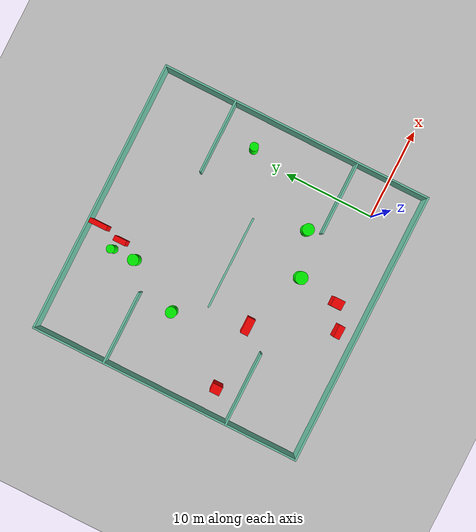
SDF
<sdf version="1.7">
 <world name="default">
  <light name="sun" type="directional">
   <pose>0 0 10 0 -0 0</pose>
   <diffuse>0.8 0.8 0.8 1</diffuse>
   <specular>0.2 0.2 0.2 1</specular>
   <attenuation>
    <range>1000</range>
    <constant>0.9</constant>
    <linear>0.01</linear>
    <quadratic>0.001</quadratic>
   </attenuation>
   <direction>-0.5 0.1 -0.9</direction>
   <spot><inner_angle>0</inner_angle><outer_angle>0</outer_angle><falloff>0</falloff></spot>
  </light>
  <model name="ground_plane">
   <static>1</static>
   <link name="link">
    <collision name="collision">
     <geometry><plane><normal>0 0 1</normal><size>100 100</size></plane></geometry>
     <surface>
      <contact><collide_bitmask>65535</collide_bitmask></contact>
      <friction><ode><mu>100</mu><mu2>50</mu2></ode></friction>
     </surface>
    </collision>
    <visual name="visual">
     <cast_shadows>0</cast_shadows>
     <geometry><plane><normal>0 0 1</normal><size>100 100</size></plane></geometry>
     <material>
      <script><uri>file://media/materials/scripts/gazebo.material</uri><name>Gazebo/Grey</name></script>
     </material>
    </visual>
   </link>
  </model>
  <gravity>0 0 -9.8</gravity>
  <magnetic_field>6e-06 2.3e-05 -4.2e-05</magnetic_field>
  <atmosphere type="adiabatic"/>
  <physics type="ode">
   <max_step_size>0.001</max_step_size>
   <real_time_factor>1</real_time_factor>
   <real_time_update_rate>1000</real_time_update_rate>
  </physics>
  <scene><ambient>0.4 0.4 0.4 1</ambient><background>0.7 0.7 0.7 1</background><shadows>1</shadows></scene>
  <spherical_coordinates>
   <surface_model>EARTH_WGS84</surface_model>
   <latitude_deg>0</latitude_deg>
   <longitude_deg>0</longitude_deg>
   <elevation>0</elevation>
   <heading_deg>0</heading_deg>
  </spherical_coordinates>
  <model name="my_base_walls">
   <link name="Wall_10">
    <collision name="Wall_10_Collision">
     <geometry><box><size>8.2 0.2 2.5</size></box></geometry>
     <pose>0 0 1.25 0 -0 0</pose>
    </collision>
    <visual name="Wall_10_Visual">
     <pose>0 0 1.25 0 -0 0</pose>
     <geometry><box><size>8.2 0.2 2.5</size></box></geometry>
     <material>
      <script><uri>file://media/materials/scripts/gazebo.material</uri><name>Gazebo/Grey</name></script>
      <ambient>0.435294 0.796078 0.67451 1</ambient>
     </material>
     <meta><layer>0</layer></meta>
    </visual>
    <pose>-11 -7 0 0 -0 0</pose>
   </link>
   <link name="Wall_12">
    <collision name="Wall_12_Collision">
     <geometry><box><size>8.2 0.2 2.5</size></box></geometry>
     <pose>0 0 1.25 0 -0 0</pose>
    </collision>
    <visual name="Wall_12_Visual">
     <pose>0 0 1.25 0 -0 0</pose>
     <geometry><box><size>8.2 0.2 2.5</size></box></geometry>
     <material>
      <script><uri>file://media/materials/scripts/gazebo.material</uri><name>Gazebo/Grey</name></script>
      <ambient>0.435294 0.796078 0.67451 1</ambient>
     </material>
     <meta><layer>0</layer></meta>
    </visual>
    <pose>-11 7 0 0 -0 0</pose>
   </link>
   <link name="Wall_14">
    <collision name="Wall_14_Collision">
     <geometry><box><size>8.2 0.2 2.5</size></box></geometry>
     <pose>0 0 1.25 0 -0 0</pose>
    </collision>
    <visual name="Wall_14_Visual">
     <pose>0 0 1.25 0 -0 0</pose>
     <geometry><box><size>8.2 0.2 2.5</size></box></geometry>
     <material>
      <script><uri>file://media/materials/scripts/gazebo.material</uri><name>Gazebo/Grey</name></script>
      <ambient>0.435294 0.796078 0.67451 1</ambient>
     </material>
     <meta><layer>0</layer></meta>
    </visual>
    <pose>11 7 0 0 -0 3.14159</pose>
   </link>
   <link name="Wall_16">
    <collision name="Wall_16_Collision">
     <geometry><box><size>10.2 0.2 2.5</size></box></geometry>
     <pose>0 0 1.25 0 -0 0</pose>
    </collision>
    <visual name="Wall_16_Visual">
     <pose>0 0 1.25 0 -0 0</pose>
     <geometry><box><size>10.2 0.2 2.5</size></box></geometry>
     <material>
      <script><uri>file://media/materials/scripts/gazebo.material</uri><name>Gazebo/Grey</name></script>
      <ambient>0.435294 0.796078 0.67451 1</ambient>
     </material>
     <meta><layer>0</layer></meta>
    </visual>
    <pose>0 0 0 0 -0 3.14159</pose>
   </link>
   <link name="Wall_2">
    <collision name="Wall_2_Collision">
     <geometry><box><size>30.2 0.2 2.5</size></box></geometry>
     <pose>0 0 1.25 0 -0 0</pose>
    </collision>
    <visual name="Wall_2_Visual">
     <pose>0 0 1.25 0 -0 0</pose>
     <geometry><box><size>30.2 0.2 2.5</size></box></geometry>
     <material>
      <script><uri>file://media/materials/scripts/gazebo.material</uri><name>Gazebo/Grey</name></script>
      <ambient>0.435294 0.796078 0.67451 1</ambient>
     </material>
     <meta><layer>0</layer></meta>
    </visual>
    <pose>0 -15 0 0 -0 3.14159</pose>
   </link>
   <link name="Wall_3">
    <collision name="Wall_3_Collision">
     <geometry><box><size>30.2 0.2 2.5</size></box></geometry>
     <pose>0 0 1.25 0 -0 0</pose>
    </collision>
    <visual name="Wall_3_Visual">
     <pose>0 0 1.25 0 -0 0</pose>
     <geometry><box><size>30.2 0.2 2.5</size></box></geometry>
     <material>
      <script><uri>file://media/materials/scripts/gazebo.material</uri><name>Gazebo/Grey</name></script>
      <ambient>0.435294 0.796078 0.67451 1</ambient>
     </material>
     <meta><layer>0</layer></meta>
    </visual>
    <pose>-15 0 0 0 -0 1.5708</pose>
   </link>
   <link name="Wall_4">
    <collision name="Wall_4_Collision">
     <geometry><box><size>30.2 0.2 2.5</size></box></geometry>
     <pose>0 0 1.25 0 -0 0</pose>
    </collision>
    <visual name="Wall_4_Visual">
     <pose>0 0 1.25 0 -0 0</pose>
     <geometry><box><size>30.2 0.2 2.5</size></box></geometry>
     <material>
      <script><uri>file://media/materials/scripts/gazebo.material</uri><name>Gazebo/Grey</name></script>
      <ambient>0.435294 0.796078 0.67451 1</ambient>
     </material>
     <meta><layer>0</layer></meta>
    </visual>
    <pose>0 15 0 0 -0 0</pose>
   </link>
   <link name="Wall_6">
    <collision name="Wall_6_Collision">
     <geometry><box><size>30.2 0.2 2.5</size></box></geometry>
     <pose>0 0 1.25 0 -0 0</pose>
    </collision>
    <visual name="Wall_6_Visual">
     <pose>0 0 1.25 0 -0 0</pose>
     <geometry><box><size>30.2 0.2 2.5</size></box></geometry>
     <material>
      <script><uri>file://media/materials/scripts/gazebo.material</uri><name>Gazebo/Grey</name></script>
      <ambient>0.435294 0.796078 0.67451 1</ambient>
     </material>
     <meta><layer>0</layer></meta>
    </visual>
    <pose>15 0 0 0 -0 1.5708</pose>
   </link>
   <link name="Wall_8">
    <collision name="Wall_8_Collision">
     <geometry><box><size>8.2 0.2 2.5</size></box></geometry>
     <pose>0 0 1.25 0 -0 0</pose>
    </collision>
    <visual name="Wall_8_Visual">
     <pose>0 0 1.25 0 -0 0</pose>
     <geometry><box><size>8.2 0.2 2.5</size></box></geometry>
     <material>
      <script><uri>file://media/materials/scripts/gazebo.material</uri><name>Gazebo/Grey</name></script>
      <ambient>0.435294 0.796078 0.67451 1</ambient>
     </material>
     <meta><layer>0</layer></meta>
    </visual>
    <pose>11 -7 0 0 -0 3.14159</pose>
   </link>
   <static>1</static>
   <pose>-11 11 0 0 -0 0</pose>
  </model>
  <model name="cylinder1">
   <static>1</static>
   <link name="link">
    <inertial>
     <mass>1</mass>
     <inertia><ixx>0.5</ixx><ixy>0</ixy><ixz>0</ixz><iyy>0.5</iyy><iyz>0</iyz><izz>1</izz></inertia>
    </inertial>
    <collision name="collision">
     <geometry><cylinder><radius>0.6044838906310632</radius><length>2.5</length></cylinder></geometry>
    </collision>
    <visual name="visual">
     <geometry><cylinder><radius>0.6044838906310632</radius><length>2.5</length></cylinder></geometry>
     <material>
      <ambient>0 1 0 1</ambient>
      <diffuse>0 1 0 1</diffuse>
      <specular>0.1 0.1 0.1 1</specular>
      <emissive>0 0 0 0</emissive>
     </material>
    </visual>
   </link>
   <pose>-15.230255865294101 20.048176180639352 1.25 0 0 0</pose>
  </model>
  <model name="cylinder2">
   <static>1</static>
   <link name="link">
    <inertial>
     <mass>1</mass>
     <inertia><ixx>0.5</ixx><ixy>0</ixy><ixz>0</ixz><iyy>0.5</iyy><iyz>0</iyz><izz>1</izz></inertia>
    </inertial>
    <collision name="collision">
     <geometry><cylinder><radius>0.4685502785362157</radius><length>2.5</length></cylinder></geometry>
    </collision>
    <visual name="visual">
     <geometry><cylinder><radius>0.4685502785362157</radius><length>2.5</length></cylinder></geometry>
     <material>
      <ambient>0 1 0 1</ambient>
      <diffuse>0 1 0 1</diffuse>
      <specular>0.1 0.1 0.1 1</specular>
      <emissive>0 0 0 0</emissive>
     </material>
    </visual>
   </link>
   <pose>0.6713513981502999 14.21715057139135 1.25 0 0 0</pose>
  </model>
  <model name="cylinder3">
   <static>1</static>
   <link name="link">
    <inertial>
     <mass>1</mass>
     <inertia><ixx>0.5</ixx><ixy>0</ixy><ixz>0</ixz><iyy>0.5</iyy><iyz>0</iyz><izz>1</izz></inertia>
    </inertial>
    <collision name="collision">
     <geometry><cylinder><radius>0.6434354386638518</radius><length>2.5</length></cylinder></geometry>
    </collision>
    <visual name="visual">
     <geometry><cylinder><radius>0.6434354386638518</radius><length>2.5</length></cylinder></geometry>
     <material>
      <ambient>0 1 0 1</ambient>
      <diffuse>0 1 0 1</diffuse>
      <specular>0.1 0.1 0.1 1</specular>
      <emissive>0 0 0 0</emissive>
     </material>
    </visual>
   </link>
   <pose>-4.3863499175787055 5.461790274709365 1.25 0 0 0</pose>
  </model>
  <model name="cylinder4">
   <static>1</static>
   <link name="link">
    <inertial>
     <mass>1</mass>
     <inertia><ixx>0.5</ixx><ixy>0</ixy><ixz>0</ixz><iyy>0.5</iyy><iyz>0</iyz><izz>1</izz></inertia>
    </inertial>
    <collision name="collision">
     <geometry><cylinder><radius>0.5993134863130052</radius><length>2.5</length></cylinder></geometry>
    </collision>
    <visual name="visual">
     <geometry><cylinder><radius>0.5993134863130052</radius><length>2.5</length></cylinder></geometry>
     <material>
      <ambient>0 1 0 1</ambient>
      <diffuse>0 1 0 1</diffuse>
      <specular>0.1 0.1 0.1 1</specular>
      <emissive>0 0 0 0</emissive>
     </material>
    </visual>
   </link>
   <pose>-18.281355074115552 14.17286048444899 1.25 0 0 0</pose>
  </model>
  <model name="cylinder5">
   <static>1</static>
   <link name="link">
    <inertial>
     <mass>1</mass>
     <inertia><ixx>0.5</ixx><ixy>0</ixy><ixz>0</ixz><iyy>0.5</iyy><iyz>0</iyz><izz>1</izz></inertia>
    </inertial>
    <collision name="collision">
     <geometry><cylinder><radius>0.6905735222129946</radius><length>2.5</length></cylinder></geometry>
    </collision>
    <visual name="visual">
     <geometry><cylinder><radius>0.6905735222129946</radius><length>2.5</length></cylinder></geometry>
     <material>
      <ambient>0 1 0 1</ambient>
      <diffuse>0 1 0 1</diffuse>
      <specular>0.1 0.1 0.1 1</specular>
      <emissive>0 0 0 0</emissive>
     </material>
    </visual>
   </link>
   <pose>-9.113282272911833 3.8464267327424917 1.25 0 0 0</pose>
  </model>
  <model name="cylinder6">
   <static>1</static>
   <link name="link">
    <inertial>
     <mass>1</mass>
     <inertia><ixx>0.5</ixx><ixy>0</ixy><ixz>0</ixz><iyy>0.5</iyy><iyz>0</iyz><izz>1</izz></inertia>
    </inertial>
    <collision name="collision">
     <geometry><cylinder><radius>0.45082677214110745</radius><length>2.5</length></cylinder></geometry>
    </collision>
    <visual name="visual">
     <geometry><cylinder><radius>0.45082677214110745</radius><length>2.5</length></cylinder></geometry>
     <material>
      <ambient>0 1 0 1</ambient>
      <diffuse>0 1 0 1</diffuse>
      <specular>0.1 0.1 0.1 1</specular>
      <emissive>0 0 0 0</emissive>
     </material>
    </visual>
   </link>
   <pose>-15.2627988728632 22.61732838516676 1.25 0 0 0</pose>
  </model>
  <model name="box1">
   <static>1</static>
   <link name="link">
    <inertial>
     <mass>1</mass>
     <inertia><ixx>0.083</ixx><ixy>0</ixy><ixz>0</ixz><iyy>0.083</iyy><iyz>0</iyz><izz>0.083</izz></inertia>
    </inertial>
    <collision name="collision">
     <geometry><box><size>1.0252625656128567 1.1911847175395072 2.5</size></box></geometry>
    </collision>
    <visual name="visual">
     <geometry><box><size>1.0252625656128567 1.1911847175395072 2.5</size></box></geometry>
     <material>
      <ambient>1 0 0 1</ambient>
      <diffuse>1 0 0 1</diffuse>
      <specular>0.1 0.1 0.1 1</specular>
      <emissive>0 0 0 0</emissive>
     </material>
    </visual>
    <sensor name="my_contact" type="contact">
     <contact><collision>box_collision</collision><topic>__default_topic__</topic></contact>
    </sensor>
   </link>
   <pose>-9.775065413624155 -0.6613606565566741 1.25 0 0 0</pose>
  </model>
  <model name="box2">
   <static>1</static>
   <link name="link">
    <inertial>
     <mass>1</mass>
     <inertia><ixx>0.083</ixx><ixy>0</ixy><ixz>0</ixz><iyy>0.083</iyy><iyz>0</iyz><izz>0.083</izz></inertia>
    </inertial>
    <collision name="collision">
     <geometry><box><size>0.5708103243194916 1.3607860336469877 2.5</size></box></geometry>
    </collision>
    <visual name="visual">
     <geometry><box><size>0.5708103243194916 1.3607860336469877 2.5</size></box></geometry>
     <material>
      <ambient>1 0 0 1</ambient>
      <diffuse>1 0 0 1</diffuse>
      <specular>0.1 0.1 0.1 1</specular>
      <emissive>0 0 0 0</emissive>
     </material>
    </visual>
    <sensor name="my_contact" type="contact">
     <contact><collision>box_collision</collision><topic>__default_topic__</topic></contact>
    </sensor>
   </link>
   <pose>-14.080870794785296 22.146538519793182 1.25 0 0 0</pose>
  </model>
  <model name="box3">
   <static>1</static>
   <link name="link">
    <inertial>
     <mass>1</mass>
     <inertia><ixx>0.083</ixx><ixy>0</ixy><ixz>0</ixz><iyy>0.083</iyy><iyz>0</iyz><izz>0.083</izz></inertia>
    </inertial>
    <collision name="collision">
     <geometry><box><size>0.5182845168214056 1.9892646303923687 2.5</size></box></geometry>
    </collision>
    <visual name="visual">
     <geometry><box><size>0.5182845168214056 1.9892646303923687 2.5</size></box></geometry>
     <material>
      <ambient>1 0 0 1</ambient>
      <diffuse>1 0 0 1</diffuse>
      <specular>0.1 0.1 0.1 1</specular>
      <emissive>0 0 0 0</emissive>
     </material>
    </visual>
    <sensor name="my_contact" type="contact">
     <contact><collision>box_collision</collision><topic>__default_topic__</topic></contact>
    </sensor>
   </link>
   <pose>-13.565565321639141 24.88200817399466 1.25 0 0 0</pose>
  </model>
  <model name="box4">
   <static>1</static>
   <link name="link">
    <inertial>
     <mass>1</mass>
     <inertia><ixx>0.083</ixx><ixy>0</ixy><ixz>0</ixz><iyy>0.083</iyy><iyz>0</iyz><izz>0.083</izz></inertia>
    </inertial>
    <collision name="collision">
     <geometry><box><size>1.4085042718965655 0.6799517424336915 2.5</size></box></geometry>
    </collision>
    <visual name="visual">
     <geometry><box><size>1.4085042718965655 0.6799517424336915 2.5</size></box></geometry>
     <material>
      <ambient>1 0 0 1</ambient>
      <diffuse>1 0 0 1</diffuse>
      <specular>0.1 0.1 0.1 1</specular>
      <emissive>0 0 0 0</emissive>
     </material>
    </visual>
    <sensor name="my_contact" type="contact">
     <contact><collision>box_collision</collision><topic>__default_topic__</topic></contact>
    </sensor>
   </link>
   <pose>-12.3071901662518 -2.0941052739212127 1.25 0 0 0</pose>
  </model>
  <model name="box5">
   <static>1</static>
   <link name="link">
    <inertial>
     <mass>1</mass>
     <inertia><ixx>0.083</ixx><ixy>0</ixy><ixz>0</ixz><iyy>0.083</iyy><iyz>0</iyz><izz>0.083</izz></inertia>
    </inertial>
    <collision name="collision">
     <geometry><box><size>0.9570778992611514 1.087938235889289 2.5</size></box></geometry>
    </collision>
    <visual name="visual">
     <geometry><box><size>0.9570778992611514 1.087938235889289 2.5</size></box></geometry>
     <material>
      <ambient>1 0 0 1</ambient>
      <diffuse>1 0 0 1</diffuse>
      <specular>0.1 0.1 0.1 1</specular>
      <emissive>0 0 0 0</emissive>
     </material>
    </visual>
    <sensor name="my_contact" type="contact">
     <contact><collision>box_collision</collision><topic>__default_topic__</topic></contact>
    </sensor>
   </link>
   <pose>-23.20757491864073 6.4915695921931444 1.25 0 0 0</pose>
  </model>
  <model name="box6">
   <static>1</static>
   <link name="link">
    <inertial>
     <mass>1</mass>
     <inertia><ixx>0.083</ixx><ixy>0</ixy><ixz>0</ixz><iyy>0.083</iyy><iyz>0</iyz><izz>0.083</izz></inertia>
    </inertial>
    <collision name="collision">
     <geometry><box><size>1.8322830907225687 0.8336632127914747 2.5</size></box></geometry>
    </collision>
    <visual name="visual">
     <geometry><box><size>1.8322830907225687 0.8336632127914747 2.5</size></box></geometry>
     <material>
      <ambient>1 0 0 1</ambient>
      <diffuse>1 0 0 1</diffuse>
      <specular>0.1 0.1 0.1 1</specular>
      <emissive>0 0 0 0</emissive>
     </material>
    </visual>
    <sensor name="my_contact" type="contact">
     <contact><collision>box_collision</collision><topic>__default_topic__</topic></contact>
    </sensor>
   </link>
   <pose>-16.008483915245396 6.498138810306436 1.25 0 0 0</pose>
  </model>
 </world>
</sdf>
